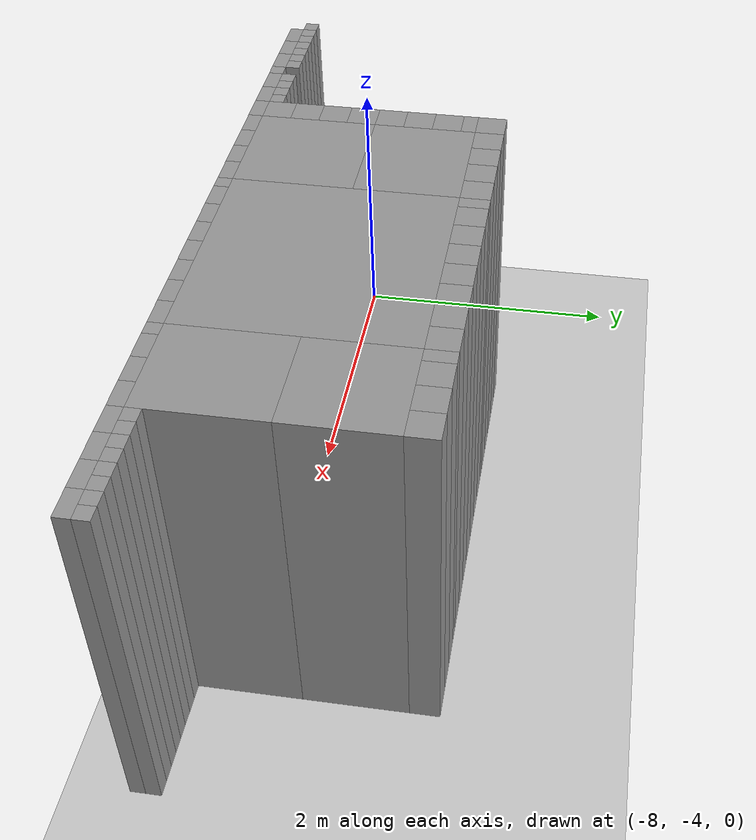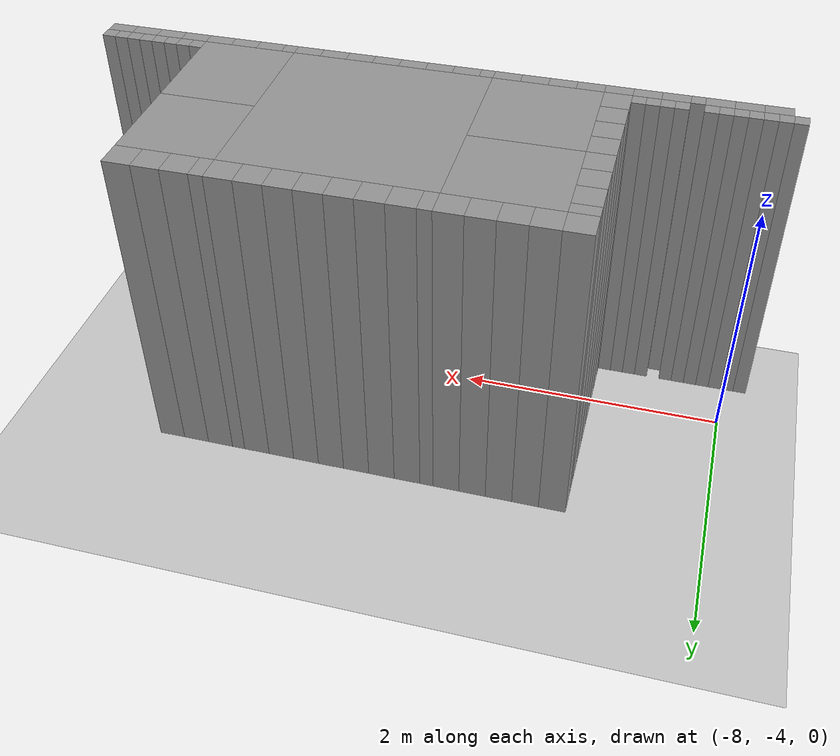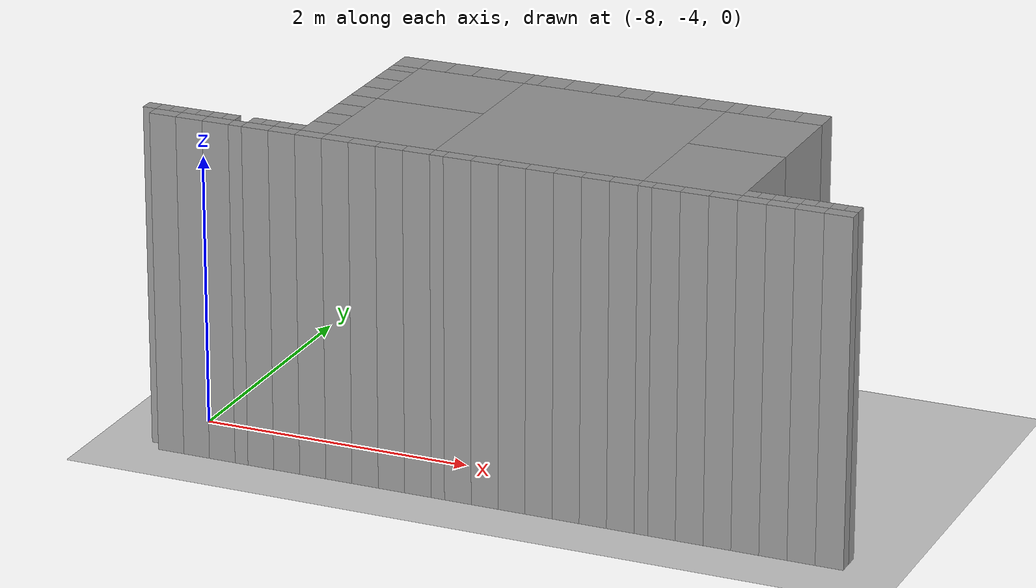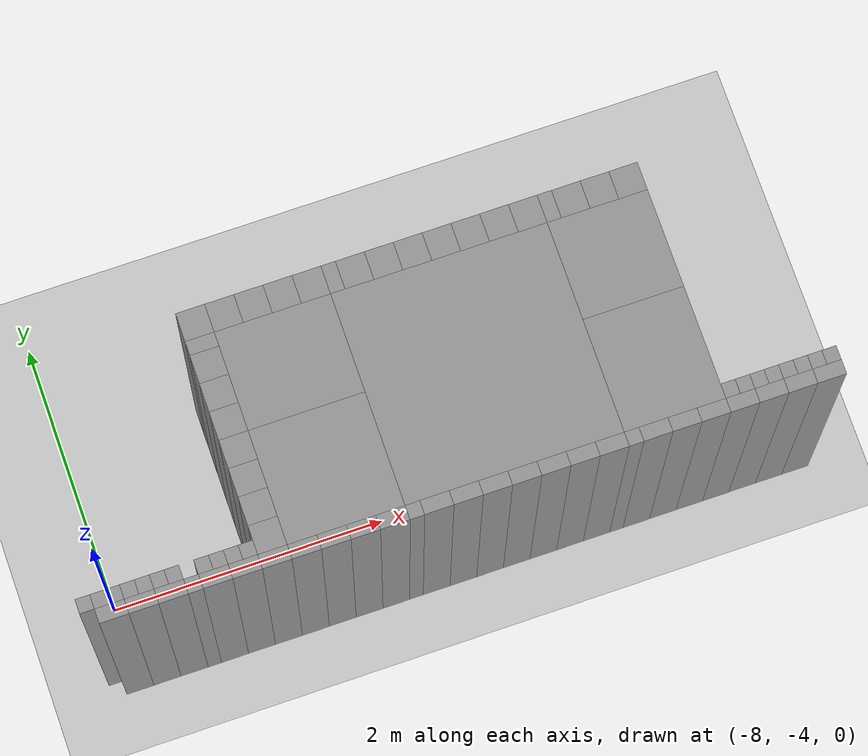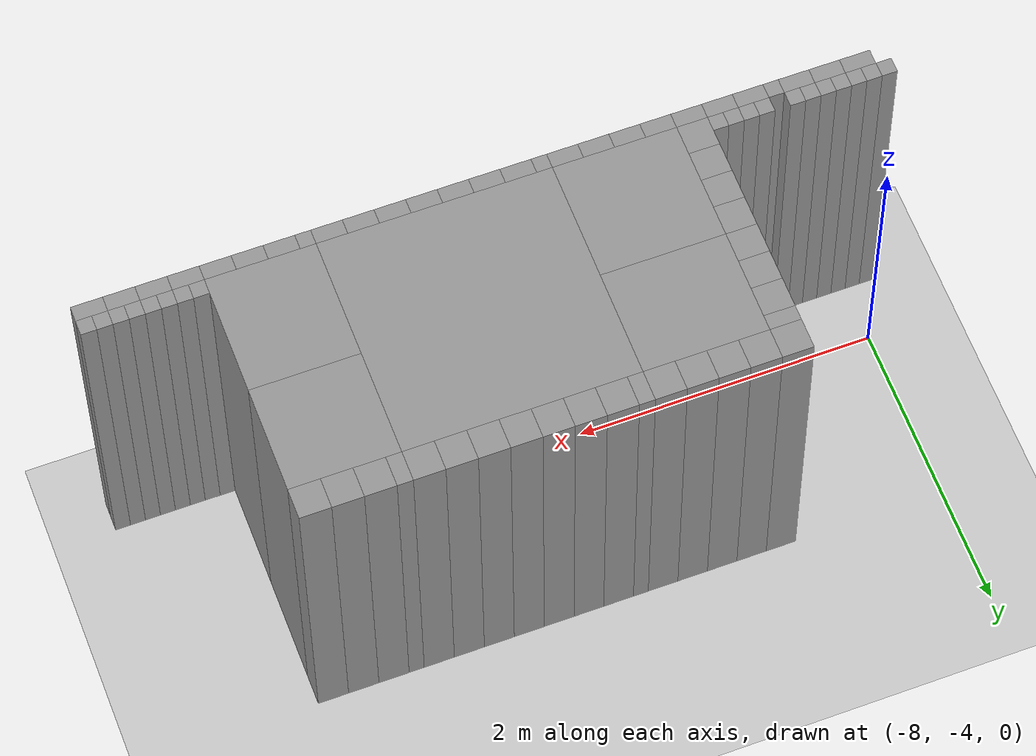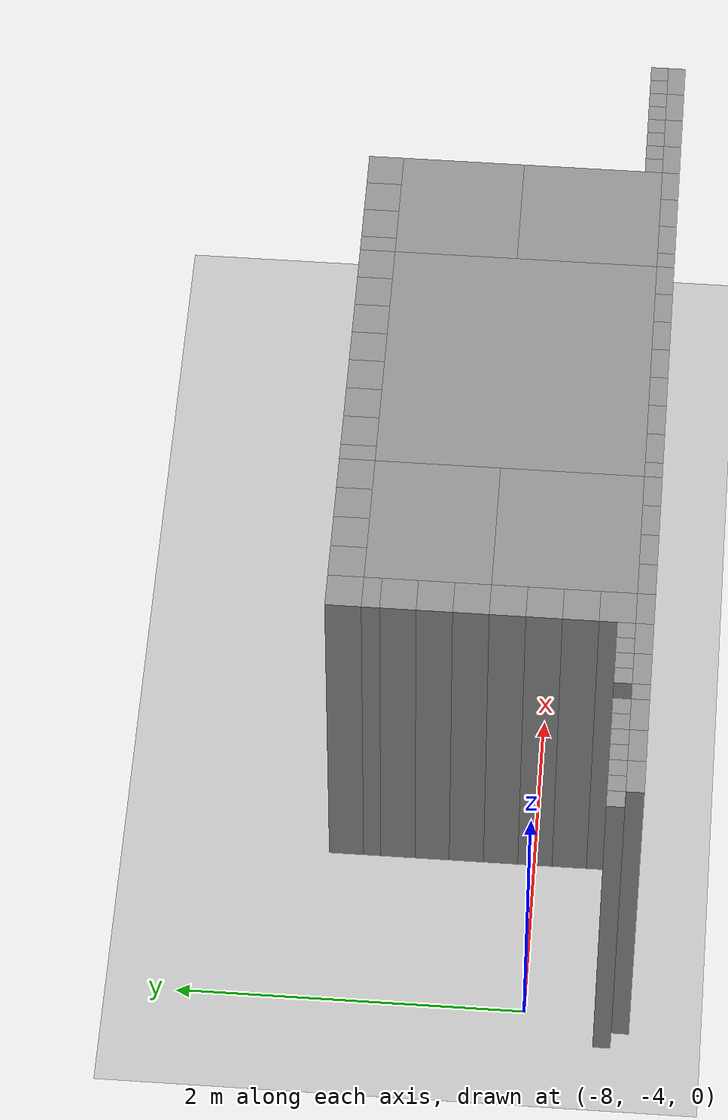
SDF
<sdf version="1.6">
 <world name="default">
  <include><uri>model://sun</uri></include>
  <include><uri>model://ground_plane</uri></include>
  <model name="stage_test">
   <static>1</static>
   <pose>-12 -12 0 0 0 0</pose>
   <link name="Wall_384">
    <pose>5.1 9.100000000000001 0 0 0 0</pose>
    <collision name="Wall_384_collision">
     <pose>0 0 1.25 0 0 0</pose>
     <geometry><box><size>0.20000000000000018 0.20000000000000107 2.5</size></box></geometry>
    </collision>
    <visual name="Wall_384_visual">
     <pose>0 0 1.25 0 0 0</pose>
     <geometry><box><size>0.20000000000000018 0.20000000000000107 2.5</size></box></geometry>
     <material>
      <script><uri>file://media/materials/scripts/gazebo.material</uri><name>Gazebo/Grey</name></script>
      <ambient>1 1 1 1</ambient>
     </material>
    </visual>
   </link>
   <link name="Wall_385">
    <pose>5.3 9.100000000000001 0 0 0 0</pose>
    <collision name="Wall_385_collision">
     <pose>0 0 1.25 0 0 0</pose>
     <geometry><box><size>0.20000000000000018 0.20000000000000107 2.5</size></box></geometry>
    </collision>
    <visual name="Wall_385_visual">
     <pose>0 0 1.25 0 0 0</pose>
     <geometry><box><size>0.20000000000000018 0.20000000000000107 2.5</size></box></geometry>
     <material>
      <script><uri>file://media/materials/scripts/gazebo.material</uri><name>Gazebo/Grey</name></script>
      <ambient>1 1 1 1</ambient>
     </material>
    </visual>
   </link>
   <link name="Wall_386">
    <pose>5.5 9.100000000000001 0 0 0 0</pose>
    <collision name="Wall_386_collision">
     <pose>0 0 1.25 0 0 0</pose>
     <geometry><box><size>0.20000000000000018 0.20000000000000107 2.5</size></box></geometry>
    </collision>
    <visual name="Wall_386_visual">
     <pose>0 0 1.25 0 0 0</pose>
     <geometry><box><size>0.20000000000000018 0.20000000000000107 2.5</size></box></geometry>
     <material>
      <script><uri>file://media/materials/scripts/gazebo.material</uri><name>Gazebo/Grey</name></script>
      <ambient>1 1 1 1</ambient>
     </material>
    </visual>
   </link>
   <link name="Wall_387">
    <pose>5.700000000000001 9.100000000000001 0 0 0 0</pose>
    <collision name="Wall_387_collision">
     <pose>0 0 1.25 0 0 0</pose>
     <geometry><box><size>0.20000000000000018 0.20000000000000107 2.5</size></box></geometry>
    </collision>
    <visual name="Wall_387_visual">
     <pose>0 0 1.25 0 0 0</pose>
     <geometry><box><size>0.20000000000000018 0.20000000000000107 2.5</size></box></geometry>
     <material>
      <script><uri>file://media/materials/scripts/gazebo.material</uri><name>Gazebo/Grey</name></script>
      <ambient>1 1 1 1</ambient>
     </material>
    </visual>
   </link>
   <link name="Wall_388">
    <pose>5.9 9.100000000000001 0 0 0 0</pose>
    <collision name="Wall_388_collision">
     <pose>0 0 1.25 0 0 0</pose>
     <geometry><box><size>0.1999999999999993 0.20000000000000107 2.5</size></box></geometry>
    </collision>
    <visual name="Wall_388_visual">
     <pose>0 0 1.25 0 0 0</pose>
     <geometry><box><size>0.1999999999999993 0.20000000000000107 2.5</size></box></geometry>
     <material>
      <script><uri>file://media/materials/scripts/gazebo.material</uri><name>Gazebo/Grey</name></script>
      <ambient>1 1 1 1</ambient>
     </material>
    </visual>
   </link>
   <link name="Wall_396">
    <pose>3.8500000000000005 7.550000000000001 0 0 0 0</pose>
    <collision name="Wall_396_collision">
     <pose>0 0 1.25 0 0 0</pose>
     <geometry><box><size>0.10000000000000009 0.10000000000000053 2.5</size></box></geometry>
    </collision>
    <visual name="Wall_396_visual">
     <pose>0 0 1.25 0 0 0</pose>
     <geometry><box><size>0.10000000000000009 0.10000000000000053 2.5</size></box></geometry>
     <material>
      <script><uri>file://media/materials/scripts/gazebo.material</uri><name>Gazebo/Grey</name></script>
      <ambient>1 1 1 1</ambient>
     </material>
    </visual>
   </link>
   <link name="Wall_397">
    <pose>3.95 7.550000000000001 0 0 0 0</pose>
    <collision name="Wall_397_collision">
     <pose>0 0 1.25 0 0 0</pose>
     <geometry><box><size>0.09999999999999964 0.10000000000000053 2.5</size></box></geometry>
    </collision>
    <visual name="Wall_397_visual">
     <pose>0 0 1.25 0 0 0</pose>
     <geometry><box><size>0.09999999999999964 0.10000000000000053 2.5</size></box></geometry>
     <material>
      <script><uri>file://media/materials/scripts/gazebo.material</uri><name>Gazebo/Grey</name></script>
      <ambient>1 1 1 1</ambient>
     </material>
    </visual>
   </link>
   <link name="Wall_398">
    <pose>4.050000000000001 7.550000000000001 0 0 0 0</pose>
    <collision name="Wall_398_collision">
     <pose>0 0 1.25 0 0 0</pose>
     <geometry><box><size>0.10000000000000053 0.10000000000000053 2.5</size></box></geometry>
    </collision>
    <visual name="Wall_398_visual">
     <pose>0 0 1.25 0 0 0</pose>
     <geometry><box><size>0.10000000000000053 0.10000000000000053 2.5</size></box></geometry>
     <material>
      <script><uri>file://media/materials/scripts/gazebo.material</uri><name>Gazebo/Grey</name></script>
      <ambient>1 1 1 1</ambient>
     </material>
    </visual>
   </link>
   <link name="Wall_399">
    <pose>4.15 7.550000000000001 0 0 0 0</pose>
    <collision name="Wall_399_collision">
     <pose>0 0 1.25 0 0 0</pose>
     <geometry><box><size>0.09999999999999964 0.10000000000000053 2.5</size></box></geometry>
    </collision>
    <visual name="Wall_399_visual">
     <pose>0 0 1.25 0 0 0</pose>
     <geometry><box><size>0.09999999999999964 0.10000000000000053 2.5</size></box></geometry>
     <material>
      <script><uri>file://media/materials/scripts/gazebo.material</uri><name>Gazebo/Grey</name></script>
      <ambient>1 1 1 1</ambient>
     </material>
    </visual>
   </link>
   <link name="Wall_400">
    <pose>4.25 7.550000000000001 0 0 0 0</pose>
    <collision name="Wall_400_collision">
     <pose>0 0 1.25 0 0 0</pose>
     <geometry><box><size>0.09999999999999964 0.10000000000000053 2.5</size></box></geometry>
    </collision>
    <visual name="Wall_400_visual">
     <pose>0 0 1.25 0 0 0</pose>
     <geometry><box><size>0.09999999999999964 0.10000000000000053 2.5</size></box></geometry>
     <material>
      <script><uri>file://media/materials/scripts/gazebo.material</uri><name>Gazebo/Grey</name></script>
      <ambient>1 1 1 1</ambient>
     </material>
    </visual>
   </link>
   <link name="Wall_401">
    <pose>4.35 7.550000000000001 0 0 0 0</pose>
    <collision name="Wall_401_collision">
     <pose>0 0 1.25 0 0 0</pose>
     <geometry><box><size>0.10000000000000053 0.10000000000000053 2.5</size></box></geometry>
    </collision>
    <visual name="Wall_401_visual">
     <pose>0 0 1.25 0 0 0</pose>
     <geometry><box><size>0.10000000000000053 0.10000000000000053 2.5</size></box></geometry>
     <material>
      <script><uri>file://media/materials/scripts/gazebo.material</uri><name>Gazebo/Grey</name></script>
      <ambient>1 1 1 1</ambient>
     </material>
    </visual>
   </link>
   <link name="Wall_402">
    <pose>4.45 7.550000000000001 0 0 0 0</pose>
    <collision name="Wall_402_collision">
     <pose>0 0 1.25 0 0 0</pose>
     <geometry><box><size>0.09999999999999964 0.10000000000000053 2.5</size></box></geometry>
    </collision>
    <visual name="Wall_402_visual">
     <pose>0 0 1.25 0 0 0</pose>
     <geometry><box><size>0.09999999999999964 0.10000000000000053 2.5</size></box></geometry>
     <material>
      <script><uri>file://media/materials/scripts/gazebo.material</uri><name>Gazebo/Grey</name></script>
      <ambient>1 1 1 1</ambient>
     </material>
    </visual>
   </link>
   <link name="Wall_408">
    <pose>4.0 7.45 0 0 0 0</pose>
    <collision name="Wall_408_collision">
     <pose>0 0 1.25 0 0 0</pose>
     <geometry><box><size>0.20000000000000018 0.09999999999999964 2.5</size></box></geometry>
    </collision>
    <visual name="Wall_408_visual">
     <pose>0 0 1.25 0 0 0</pose>
     <geometry><box><size>0.20000000000000018 0.09999999999999964 2.5</size></box></geometry>
     <material>
      <script><uri>file://media/materials/scripts/gazebo.material</uri><name>Gazebo/Grey</name></script>
      <ambient>1 1 1 1</ambient>
     </material>
    </visual>
   </link>
   <link name="Wall_409">
    <pose>4.2 7.45 0 0 0 0</pose>
    <collision name="Wall_409_collision">
     <pose>0 0 1.25 0 0 0</pose>
     <geometry><box><size>0.1999999999999993 0.09999999999999964 2.5</size></box></geometry>
    </collision>
    <visual name="Wall_409_visual">
     <pose>0 0 1.25 0 0 0</pose>
     <geometry><box><size>0.1999999999999993 0.09999999999999964 2.5</size></box></geometry>
     <material>
      <script><uri>file://media/materials/scripts/gazebo.material</uri><name>Gazebo/Grey</name></script>
      <ambient>1 1 1 1</ambient>
     </material>
    </visual>
   </link>
   <link name="Wall_410">
    <pose>4.4 7.45 0 0 0 0</pose>
    <collision name="Wall_410_collision">
     <pose>0 0 1.25 0 0 0</pose>
     <geometry><box><size>0.20000000000000018 0.09999999999999964 2.5</size></box></geometry>
    </collision>
    <visual name="Wall_410_visual">
     <pose>0 0 1.25 0 0 0</pose>
     <geometry><box><size>0.20000000000000018 0.09999999999999964 2.5</size></box></geometry>
     <material>
      <script><uri>file://media/materials/scripts/gazebo.material</uri><name>Gazebo/Grey</name></script>
      <ambient>1 1 1 1</ambient>
     </material>
    </visual>
   </link>
   <link name="Wall_411">
    <pose>5.1 8.95 0 0 0 0</pose>
    <collision name="Wall_411_collision">
     <pose>0 0 1.25 0 0 0</pose>
     <geometry><box><size>0.20000000000000018 0.09999999999999964 2.5</size></box></geometry>
    </collision>
    <visual name="Wall_411_visual">
     <pose>0 0 1.25 0 0 0</pose>
     <geometry><box><size>0.20000000000000018 0.09999999999999964 2.5</size></box></geometry>
     <material>
      <script><uri>file://media/materials/scripts/gazebo.material</uri><name>Gazebo/Grey</name></script>
      <ambient>1 1 1 1</ambient>
     </material>
    </visual>
   </link>
   <link name="Wall_412">
    <pose>5.1 8.8 0 0 0 0</pose>
    <collision name="Wall_412_collision">
     <pose>0 0 1.25 0 0 0</pose>
     <geometry><box><size>0.20000000000000018 0.1999999999999993 2.5</size></box></geometry>
    </collision>
    <visual name="Wall_412_visual">
     <pose>0 0 1.25 0 0 0</pose>
     <geometry><box><size>0.20000000000000018 0.1999999999999993 2.5</size></box></geometry>
     <material>
      <script><uri>file://media/materials/scripts/gazebo.material</uri><name>Gazebo/Grey</name></script>
      <ambient>1 1 1 1</ambient>
     </material>
    </visual>
   </link>
   <link name="Wall_413">
    <pose>5.1 8.600000000000001 0 0 0 0</pose>
    <collision name="Wall_413_collision">
     <pose>0 0 1.25 0 0 0</pose>
     <geometry><box><size>0.20000000000000018 0.20000000000000107 2.5</size></box></geometry>
    </collision>
    <visual name="Wall_413_visual">
     <pose>0 0 1.25 0 0 0</pose>
     <geometry><box><size>0.20000000000000018 0.20000000000000107 2.5</size></box></geometry>
     <material>
      <script><uri>file://media/materials/scripts/gazebo.material</uri><name>Gazebo/Grey</name></script>
      <ambient>1 1 1 1</ambient>
     </material>
    </visual>
   </link>
   <link name="Wall_414">
    <pose>5.1 8.4 0 0 0 0</pose>
    <collision name="Wall_414_collision">
     <pose>0 0 1.25 0 0 0</pose>
     <geometry><box><size>0.20000000000000018 0.1999999999999993 2.5</size></box></geometry>
    </collision>
    <visual name="Wall_414_visual">
     <pose>0 0 1.25 0 0 0</pose>
     <geometry><box><size>0.20000000000000018 0.1999999999999993 2.5</size></box></geometry>
     <material>
      <script><uri>file://media/materials/scripts/gazebo.material</uri><name>Gazebo/Grey</name></script>
      <ambient>1 1 1 1</ambient>
     </material>
    </visual>
   </link>
   <link name="Wall_415">
    <pose>4.65 7.550000000000001 0 0 0 0</pose>
    <collision name="Wall_415_collision">
     <pose>0 0 1.25 0 0 0</pose>
     <geometry><box><size>0.09999999999999964 0.10000000000000053 2.5</size></box></geometry>
    </collision>
    <visual name="Wall_415_visual">
     <pose>0 0 1.25 0 0 0</pose>
     <geometry><box><size>0.09999999999999964 0.10000000000000053 2.5</size></box></geometry>
     <material>
      <script><uri>file://media/materials/scripts/gazebo.material</uri><name>Gazebo/Grey</name></script>
      <ambient>1 1 1 1</ambient>
     </material>
    </visual>
   </link>
   <link name="Wall_416">
    <pose>4.75 7.550000000000001 0 0 0 0</pose>
    <collision name="Wall_416_collision">
     <pose>0 0 1.25 0 0 0</pose>
     <geometry><box><size>0.10000000000000053 0.10000000000000053 2.5</size></box></geometry>
    </collision>
    <visual name="Wall_416_visual">
     <pose>0 0 1.25 0 0 0</pose>
     <geometry><box><size>0.10000000000000053 0.10000000000000053 2.5</size></box></geometry>
     <material>
      <script><uri>file://media/materials/scripts/gazebo.material</uri><name>Gazebo/Grey</name></script>
      <ambient>1 1 1 1</ambient>
     </material>
    </visual>
   </link>
   <link name="Wall_417">
    <pose>5.1 8.2 0 0 0 0</pose>
    <collision name="Wall_417_collision">
     <pose>0 0 1.25 0 0 0</pose>
     <geometry><box><size>0.20000000000000018 0.20000000000000107 2.5</size></box></geometry>
    </collision>
    <visual name="Wall_417_visual">
     <pose>0 0 1.25 0 0 0</pose>
     <geometry><box><size>0.20000000000000018 0.20000000000000107 2.5</size></box></geometry>
     <material>
      <script><uri>file://media/materials/scripts/gazebo.material</uri><name>Gazebo/Grey</name></script>
      <ambient>1 1 1 1</ambient>
     </material>
    </visual>
   </link>
   <link name="Wall_418">
    <pose>5.1 8.0 0 0 0 0</pose>
    <collision name="Wall_418_collision">
     <pose>0 0 1.25 0 0 0</pose>
     <geometry><box><size>0.20000000000000018 0.1999999999999993 2.5</size></box></geometry>
    </collision>
    <visual name="Wall_418_visual">
     <pose>0 0 1.25 0 0 0</pose>
     <geometry><box><size>0.20000000000000018 0.1999999999999993 2.5</size></box></geometry>
     <material>
      <script><uri>file://media/materials/scripts/gazebo.material</uri><name>Gazebo/Grey</name></script>
      <ambient>1 1 1 1</ambient>
     </material>
    </visual>
   </link>
   <link name="Wall_419">
    <pose>4.8500000000000005 7.550000000000001 0 0 0 0</pose>
    <collision name="Wall_419_collision">
     <pose>0 0 1.25 0 0 0</pose>
     <geometry><box><size>0.09999999999999964 0.10000000000000053 2.5</size></box></geometry>
    </collision>
    <visual name="Wall_419_visual">
     <pose>0 0 1.25 0 0 0</pose>
     <geometry><box><size>0.09999999999999964 0.10000000000000053 2.5</size></box></geometry>
     <material>
      <script><uri>file://media/materials/scripts/gazebo.material</uri><name>Gazebo/Grey</name></script>
      <ambient>1 1 1 1</ambient>
     </material>
    </visual>
   </link>
   <link name="Wall_420">
    <pose>4.95 7.550000000000001 0 0 0 0</pose>
    <collision name="Wall_420_collision">
     <pose>0 0 1.25 0 0 0</pose>
     <geometry><box><size>0.09999999999999964 0.10000000000000053 2.5</size></box></geometry>
    </collision>
    <visual name="Wall_420_visual">
     <pose>0 0 1.25 0 0 0</pose>
     <geometry><box><size>0.09999999999999964 0.10000000000000053 2.5</size></box></geometry>
     <material>
      <script><uri>file://media/materials/scripts/gazebo.material</uri><name>Gazebo/Grey</name></script>
      <ambient>1 1 1 1</ambient>
     </material>
    </visual>
   </link>
   <link name="Wall_421">
    <pose>5.1 7.800000000000001 0 0 0 0</pose>
    <collision name="Wall_421_collision">
     <pose>0 0 1.25 0 0 0</pose>
     <geometry><box><size>0.20000000000000018 0.20000000000000018 2.5</size></box></geometry>
    </collision>
    <visual name="Wall_421_visual">
     <pose>0 0 1.25 0 0 0</pose>
     <geometry><box><size>0.20000000000000018 0.20000000000000018 2.5</size></box></geometry>
     <material>
      <script><uri>file://media/materials/scripts/gazebo.material</uri><name>Gazebo/Grey</name></script>
      <ambient>1 1 1 1</ambient>
     </material>
    </visual>
   </link>
   <link name="Wall_422">
    <pose>5.1 7.6 0 0 0 0</pose>
    <collision name="Wall_422_collision">
     <pose>0 0 1.25 0 0 0</pose>
     <geometry><box><size>0.20000000000000018 0.20000000000000018 2.5</size></box></geometry>
    </collision>
    <visual name="Wall_422_visual">
     <pose>0 0 1.25 0 0 0</pose>
     <geometry><box><size>0.20000000000000018 0.20000000000000018 2.5</size></box></geometry>
     <material>
      <script><uri>file://media/materials/scripts/gazebo.material</uri><name>Gazebo/Grey</name></script>
      <ambient>1 1 1 1</ambient>
     </material>
    </visual>
   </link>
   <link name="Wall_423">
    <pose>5.6 8.65 0 0 0 0</pose>
    <collision name="Wall_423_collision">
     <pose>0 0 1.25 0 0 0</pose>
     <geometry><box><size>0.7999999999999998 0.6999999999999993 2.5</size></box></geometry>
    </collision>
    <visual name="Wall_423_visual">
     <pose>0 0 1.25 0 0 0</pose>
     <geometry><box><size>0.7999999999999998 0.6999999999999993 2.5</size></box></geometry>
     <material>
      <script><uri>file://media/materials/scripts/gazebo.material</uri><name>Gazebo/Grey</name></script>
      <ambient>1 1 1 1</ambient>
     </material>
    </visual>
   </link>
   <link name="Wall_424">
    <pose>5.6 7.9 0 0 0 0</pose>
    <collision name="Wall_424_collision">
     <pose>0 0 1.25 0 0 0</pose>
     <geometry><box><size>0.7999999999999998 0.8000000000000007 2.5</size></box></geometry>
    </collision>
    <visual name="Wall_424_visual">
     <pose>0 0 1.25 0 0 0</pose>
     <geometry><box><size>0.7999999999999998 0.8000000000000007 2.5</size></box></geometry>
     <material>
      <script><uri>file://media/materials/scripts/gazebo.material</uri><name>Gazebo/Grey</name></script>
      <ambient>1 1 1 1</ambient>
     </material>
    </visual>
   </link>
   <link name="Wall_425">
    <pose>4.550000000000001 7.45 0 0 0 0</pose>
    <collision name="Wall_425_collision">
     <pose>0 0 1.25 0 0 0</pose>
     <geometry><box><size>0.10000000000000053 0.09999999999999964 2.5</size></box></geometry>
    </collision>
    <visual name="Wall_425_visual">
     <pose>0 0 1.25 0 0 0</pose>
     <geometry><box><size>0.10000000000000053 0.09999999999999964 2.5</size></box></geometry>
     <material>
      <script><uri>file://media/materials/scripts/gazebo.material</uri><name>Gazebo/Grey</name></script>
      <ambient>1 1 1 1</ambient>
     </material>
    </visual>
   </link>
   <link name="Wall_426">
    <pose>4.700000000000001 7.45 0 0 0 0</pose>
    <collision name="Wall_426_collision">
     <pose>0 0 1.25 0 0 0</pose>
     <geometry><box><size>0.20000000000000018 0.09999999999999964 2.5</size></box></geometry>
    </collision>
    <visual name="Wall_426_visual">
     <pose>0 0 1.25 0 0 0</pose>
     <geometry><box><size>0.20000000000000018 0.09999999999999964 2.5</size></box></geometry>
     <material>
      <script><uri>file://media/materials/scripts/gazebo.material</uri><name>Gazebo/Grey</name></script>
      <ambient>1 1 1 1</ambient>
     </material>
    </visual>
   </link>
   <link name="Wall_427">
    <pose>4.9 7.45 0 0 0 0</pose>
    <collision name="Wall_427_collision">
     <pose>0 0 1.25 0 0 0</pose>
     <geometry><box><size>0.1999999999999993 0.09999999999999964 2.5</size></box></geometry>
    </collision>
    <visual name="Wall_427_visual">
     <pose>0 0 1.25 0 0 0</pose>
     <geometry><box><size>0.1999999999999993 0.09999999999999964 2.5</size></box></geometry>
     <material>
      <script><uri>file://media/materials/scripts/gazebo.material</uri><name>Gazebo/Grey</name></script>
      <ambient>1 1 1 1</ambient>
     </material>
    </visual>
   </link>
   <link name="Wall_428">
    <pose>5.1 7.45 0 0 0 0</pose>
    <collision name="Wall_428_collision">
     <pose>0 0 1.25 0 0 0</pose>
     <geometry><box><size>0.20000000000000018 0.09999999999999964 2.5</size></box></geometry>
    </collision>
    <visual name="Wall_428_visual">
     <pose>0 0 1.25 0 0 0</pose>
     <geometry><box><size>0.20000000000000018 0.09999999999999964 2.5</size></box></geometry>
     <material>
      <script><uri>file://media/materials/scripts/gazebo.material</uri><name>Gazebo/Grey</name></script>
      <ambient>1 1 1 1</ambient>
     </material>
    </visual>
   </link>
   <link name="Wall_429">
    <pose>5.3 7.45 0 0 0 0</pose>
    <collision name="Wall_429_collision">
     <pose>0 0 1.25 0 0 0</pose>
     <geometry><box><size>0.20000000000000018 0.09999999999999964 2.5</size></box></geometry>
    </collision>
    <visual name="Wall_429_visual">
     <pose>0 0 1.25 0 0 0</pose>
     <geometry><box><size>0.20000000000000018 0.09999999999999964 2.5</size></box></geometry>
     <material>
      <script><uri>file://media/materials/scripts/gazebo.material</uri><name>Gazebo/Grey</name></script>
      <ambient>1 1 1 1</ambient>
     </material>
    </visual>
   </link>
   <link name="Wall_430">
    <pose>5.5 7.45 0 0 0 0</pose>
    <collision name="Wall_430_collision">
     <pose>0 0 1.25 0 0 0</pose>
     <geometry><box><size>0.20000000000000018 0.09999999999999964 2.5</size></box></geometry>
    </collision>
    <visual name="Wall_430_visual">
     <pose>0 0 1.25 0 0 0</pose>
     <geometry><box><size>0.20000000000000018 0.09999999999999964 2.5</size></box></geometry>
     <material>
      <script><uri>file://media/materials/scripts/gazebo.material</uri><name>Gazebo/Grey</name></script>
      <ambient>1 1 1 1</ambient>
     </material>
    </visual>
   </link>
   <link name="Wall_431">
    <pose>5.700000000000001 7.45 0 0 0 0</pose>
    <collision name="Wall_431_collision">
     <pose>0 0 1.25 0 0 0</pose>
     <geometry><box><size>0.20000000000000018 0.09999999999999964 2.5</size></box></geometry>
    </collision>
    <visual name="Wall_431_visual">
     <pose>0 0 1.25 0 0 0</pose>
     <geometry><box><size>0.20000000000000018 0.09999999999999964 2.5</size></box></geometry>
     <material>
      <script><uri>file://media/materials/scripts/gazebo.material</uri><name>Gazebo/Grey</name></script>
      <ambient>1 1 1 1</ambient>
     </material>
    </visual>
   </link>
   <link name="Wall_432">
    <pose>5.9 7.45 0 0 0 0</pose>
    <collision name="Wall_432_collision">
     <pose>0 0 1.25 0 0 0</pose>
     <geometry><box><size>0.1999999999999993 0.09999999999999964 2.5</size></box></geometry>
    </collision>
    <visual name="Wall_432_visual">
     <pose>0 0 1.25 0 0 0</pose>
     <geometry><box><size>0.1999999999999993 0.09999999999999964 2.5</size></box></geometry>
     <material>
      <script><uri>file://media/materials/scripts/gazebo.material</uri><name>Gazebo/Grey</name></script>
      <ambient>1 1 1 1</ambient>
     </material>
    </visual>
   </link>
   <link name="Wall_433">
    <pose>6.050000000000001 9.100000000000001 0 0 0 0</pose>
    <collision name="Wall_433_collision">
     <pose>0 0 1.25 0 0 0</pose>
     <geometry><box><size>0.10000000000000053 0.20000000000000107 2.5</size></box></geometry>
    </collision>
    <visual name="Wall_433_visual">
     <pose>0 0 1.25 0 0 0</pose>
     <geometry><box><size>0.10000000000000053 0.20000000000000107 2.5</size></box></geometry>
     <material>
      <script><uri>file://media/materials/scripts/gazebo.material</uri><name>Gazebo/Grey</name></script>
      <ambient>1 1 1 1</ambient>
     </material>
    </visual>
   </link>
   <link name="Wall_434">
    <pose>6.200000000000001 9.100000000000001 0 0 0 0</pose>
    <collision name="Wall_434_collision">
     <pose>0 0 1.25 0 0 0</pose>
     <geometry><box><size>0.20000000000000018 0.20000000000000107 2.5</size></box></geometry>
    </collision>
    <visual name="Wall_434_visual">
     <pose>0 0 1.25 0 0 0</pose>
     <geometry><box><size>0.20000000000000018 0.20000000000000107 2.5</size></box></geometry>
     <material>
      <script><uri>file://media/materials/scripts/gazebo.material</uri><name>Gazebo/Grey</name></script>
      <ambient>1 1 1 1</ambient>
     </material>
    </visual>
   </link>
   <link name="Wall_435">
    <pose>6.4 9.100000000000001 0 0 0 0</pose>
    <collision name="Wall_435_collision">
     <pose>0 0 1.25 0 0 0</pose>
     <geometry><box><size>0.1999999999999993 0.20000000000000107 2.5</size></box></geometry>
    </collision>
    <visual name="Wall_435_visual">
     <pose>0 0 1.25 0 0 0</pose>
     <geometry><box><size>0.1999999999999993 0.20000000000000107 2.5</size></box></geometry>
     <material>
      <script><uri>file://media/materials/scripts/gazebo.material</uri><name>Gazebo/Grey</name></script>
      <ambient>1 1 1 1</ambient>
     </material>
    </visual>
   </link>
   <link name="Wall_436">
    <pose>6.6 9.100000000000001 0 0 0 0</pose>
    <collision name="Wall_436_collision">
     <pose>0 0 1.25 0 0 0</pose>
     <geometry><box><size>0.20000000000000018 0.20000000000000107 2.5</size></box></geometry>
    </collision>
    <visual name="Wall_436_visual">
     <pose>0 0 1.25 0 0 0</pose>
     <geometry><box><size>0.20000000000000018 0.20000000000000107 2.5</size></box></geometry>
     <material>
      <script><uri>file://media/materials/scripts/gazebo.material</uri><name>Gazebo/Grey</name></script>
      <ambient>1 1 1 1</ambient>
     </material>
    </visual>
   </link>
   <link name="Wall_437">
    <pose>6.8 9.100000000000001 0 0 0 0</pose>
    <collision name="Wall_437_collision">
     <pose>0 0 1.25 0 0 0</pose>
     <geometry><box><size>0.20000000000000018 0.20000000000000107 2.5</size></box></geometry>
    </collision>
    <visual name="Wall_437_visual">
     <pose>0 0 1.25 0 0 0</pose>
     <geometry><box><size>0.20000000000000018 0.20000000000000107 2.5</size></box></geometry>
     <material>
      <script><uri>file://media/materials/scripts/gazebo.material</uri><name>Gazebo/Grey</name></script>
      <ambient>1 1 1 1</ambient>
     </material>
    </visual>
   </link>
   <link name="Wall_438">
    <pose>7.0 9.100000000000001 0 0 0 0</pose>
    <collision name="Wall_438_collision">
     <pose>0 0 1.25 0 0 0</pose>
     <geometry><box><size>0.20000000000000018 0.20000000000000107 2.5</size></box></geometry>
    </collision>
    <visual name="Wall_438_visual">
     <pose>0 0 1.25 0 0 0</pose>
     <geometry><box><size>0.20000000000000018 0.20000000000000107 2.5</size></box></geometry>
     <material>
      <script><uri>file://media/materials/scripts/gazebo.material</uri><name>Gazebo/Grey</name></script>
      <ambient>1 1 1 1</ambient>
     </material>
    </visual>
   </link>
   <link name="Wall_439">
    <pose>7.200000000000001 9.100000000000001 0 0 0 0</pose>
    <collision name="Wall_439_collision">
     <pose>0 0 1.25 0 0 0</pose>
     <geometry><box><size>0.20000000000000018 0.20000000000000107 2.5</size></box></geometry>
    </collision>
    <visual name="Wall_439_visual">
     <pose>0 0 1.25 0 0 0</pose>
     <geometry><box><size>0.20000000000000018 0.20000000000000107 2.5</size></box></geometry>
     <material>
      <script><uri>file://media/materials/scripts/gazebo.material</uri><name>Gazebo/Grey</name></script>
      <ambient>1 1 1 1</ambient>
     </material>
    </visual>
   </link>
   <link name="Wall_440">
    <pose>7.4 9.100000000000001 0 0 0 0</pose>
    <collision name="Wall_440_collision">
     <pose>0 0 1.25 0 0 0</pose>
     <geometry><box><size>0.1999999999999993 0.20000000000000107 2.5</size></box></geometry>
    </collision>
    <visual name="Wall_440_visual">
     <pose>0 0 1.25 0 0 0</pose>
     <geometry><box><size>0.1999999999999993 0.20000000000000107 2.5</size></box></geometry>
     <material>
      <script><uri>file://media/materials/scripts/gazebo.material</uri><name>Gazebo/Grey</name></script>
      <ambient>1 1 1 1</ambient>
     </material>
    </visual>
   </link>
   <link name="Wall_441">
    <pose>7.550000000000001 9.100000000000001 0 0 0 0</pose>
    <collision name="Wall_441_collision">
     <pose>0 0 1.25 0 0 0</pose>
     <geometry><box><size>0.10000000000000053 0.20000000000000107 2.5</size></box></geometry>
    </collision>
    <visual name="Wall_441_visual">
     <pose>0 0 1.25 0 0 0</pose>
     <geometry><box><size>0.10000000000000053 0.20000000000000107 2.5</size></box></geometry>
     <material>
      <script><uri>file://media/materials/scripts/gazebo.material</uri><name>Gazebo/Grey</name></script>
      <ambient>1 1 1 1</ambient>
     </material>
    </visual>
   </link>
   <link name="Wall_442">
    <pose>7.700000000000001 9.100000000000001 0 0 0 0</pose>
    <collision name="Wall_442_collision">
     <pose>0 0 1.25 0 0 0</pose>
     <geometry><box><size>0.20000000000000018 0.20000000000000107 2.5</size></box></geometry>
    </collision>
    <visual name="Wall_442_visual">
     <pose>0 0 1.25 0 0 0</pose>
     <geometry><box><size>0.20000000000000018 0.20000000000000107 2.5</size></box></geometry>
     <material>
      <script><uri>file://media/materials/scripts/gazebo.material</uri><name>Gazebo/Grey</name></script>
      <ambient>1 1 1 1</ambient>
     </material>
    </visual>
   </link>
   <link name="Wall_443">
    <pose>7.9 9.100000000000001 0 0 0 0</pose>
    <collision name="Wall_443_collision">
     <pose>0 0 1.25 0 0 0</pose>
     <geometry><box><size>0.1999999999999993 0.20000000000000107 2.5</size></box></geometry>
    </collision>
    <visual name="Wall_443_visual">
     <pose>0 0 1.25 0 0 0</pose>
     <geometry><box><size>0.1999999999999993 0.20000000000000107 2.5</size></box></geometry>
     <material>
      <script><uri>file://media/materials/scripts/gazebo.material</uri><name>Gazebo/Grey</name></script>
      <ambient>1 1 1 1</ambient>
     </material>
    </visual>
   </link>
   <link name="Wall_444">
    <pose>8.100000000000001 9.100000000000001 0 0 0 0</pose>
    <collision name="Wall_444_collision">
     <pose>0 0 1.25 0 0 0</pose>
     <geometry><box><size>0.20000000000000107 0.20000000000000107 2.5</size></box></geometry>
    </collision>
    <visual name="Wall_444_visual">
     <pose>0 0 1.25 0 0 0</pose>
     <geometry><box><size>0.20000000000000107 0.20000000000000107 2.5</size></box></geometry>
     <material>
      <script><uri>file://media/materials/scripts/gazebo.material</uri><name>Gazebo/Grey</name></script>
      <ambient>1 1 1 1</ambient>
     </material>
    </visual>
   </link>
   <link name="Wall_445">
    <pose>6.75 8.25 0 0 0 0</pose>
    <collision name="Wall_445_collision">
     <pose>0 0 1.25 0 0 0</pose>
     <geometry><box><size>1.5 1.5 2.5</size></box></geometry>
    </collision>
    <visual name="Wall_445_visual">
     <pose>0 0 1.25 0 0 0</pose>
     <geometry><box><size>1.5 1.5 2.5</size></box></geometry>
     <material>
      <script><uri>file://media/materials/scripts/gazebo.material</uri><name>Gazebo/Grey</name></script>
      <ambient>1 1 1 1</ambient>
     </material>
    </visual>
   </link>
   <link name="Wall_446">
    <pose>6.050000000000001 7.45 0 0 0 0</pose>
    <collision name="Wall_446_collision">
     <pose>0 0 1.25 0 0 0</pose>
     <geometry><box><size>0.10000000000000053 0.09999999999999964 2.5</size></box></geometry>
    </collision>
    <visual name="Wall_446_visual">
     <pose>0 0 1.25 0 0 0</pose>
     <geometry><box><size>0.10000000000000053 0.09999999999999964 2.5</size></box></geometry>
     <material>
      <script><uri>file://media/materials/scripts/gazebo.material</uri><name>Gazebo/Grey</name></script>
      <ambient>1 1 1 1</ambient>
     </material>
    </visual>
   </link>
   <link name="Wall_447">
    <pose>6.200000000000001 7.45 0 0 0 0</pose>
    <collision name="Wall_447_collision">
     <pose>0 0 1.25 0 0 0</pose>
     <geometry><box><size>0.20000000000000018 0.09999999999999964 2.5</size></box></geometry>
    </collision>
    <visual name="Wall_447_visual">
     <pose>0 0 1.25 0 0 0</pose>
     <geometry><box><size>0.20000000000000018 0.09999999999999964 2.5</size></box></geometry>
     <material>
      <script><uri>file://media/materials/scripts/gazebo.material</uri><name>Gazebo/Grey</name></script>
      <ambient>1 1 1 1</ambient>
     </material>
    </visual>
   </link>
   <link name="Wall_448">
    <pose>6.4 7.45 0 0 0 0</pose>
    <collision name="Wall_448_collision">
     <pose>0 0 1.25 0 0 0</pose>
     <geometry><box><size>0.1999999999999993 0.09999999999999964 2.5</size></box></geometry>
    </collision>
    <visual name="Wall_448_visual">
     <pose>0 0 1.25 0 0 0</pose>
     <geometry><box><size>0.1999999999999993 0.09999999999999964 2.5</size></box></geometry>
     <material>
      <script><uri>file://media/materials/scripts/gazebo.material</uri><name>Gazebo/Grey</name></script>
      <ambient>1 1 1 1</ambient>
     </material>
    </visual>
   </link>
   <link name="Wall_449">
    <pose>6.6 7.45 0 0 0 0</pose>
    <collision name="Wall_449_collision">
     <pose>0 0 1.25 0 0 0</pose>
     <geometry><box><size>0.20000000000000018 0.09999999999999964 2.5</size></box></geometry>
    </collision>
    <visual name="Wall_449_visual">
     <pose>0 0 1.25 0 0 0</pose>
     <geometry><box><size>0.20000000000000018 0.09999999999999964 2.5</size></box></geometry>
     <material>
      <script><uri>file://media/materials/scripts/gazebo.material</uri><name>Gazebo/Grey</name></script>
      <ambient>1 1 1 1</ambient>
     </material>
    </visual>
   </link>
   <link name="Wall_450">
    <pose>6.8 7.45 0 0 0 0</pose>
    <collision name="Wall_450_collision">
     <pose>0 0 1.25 0 0 0</pose>
     <geometry><box><size>0.20000000000000018 0.09999999999999964 2.5</size></box></geometry>
    </collision>
    <visual name="Wall_450_visual">
     <pose>0 0 1.25 0 0 0</pose>
     <geometry><box><size>0.20000000000000018 0.09999999999999964 2.5</size></box></geometry>
     <material>
      <script><uri>file://media/materials/scripts/gazebo.material</uri><name>Gazebo/Grey</name></script>
      <ambient>1 1 1 1</ambient>
     </material>
    </visual>
   </link>
   <link name="Wall_451">
    <pose>7.0 7.45 0 0 0 0</pose>
    <collision name="Wall_451_collision">
     <pose>0 0 1.25 0 0 0</pose>
     <geometry><box><size>0.20000000000000018 0.09999999999999964 2.5</size></box></geometry>
    </collision>
    <visual name="Wall_451_visual">
     <pose>0 0 1.25 0 0 0</pose>
     <geometry><box><size>0.20000000000000018 0.09999999999999964 2.5</size></box></geometry>
     <material>
      <script><uri>file://media/materials/scripts/gazebo.material</uri><name>Gazebo/Grey</name></script>
      <ambient>1 1 1 1</ambient>
     </material>
    </visual>
   </link>
   <link name="Wall_452">
    <pose>7.200000000000001 7.45 0 0 0 0</pose>
    <collision name="Wall_452_collision">
     <pose>0 0 1.25 0 0 0</pose>
     <geometry><box><size>0.20000000000000018 0.09999999999999964 2.5</size></box></geometry>
    </collision>
    <visual name="Wall_452_visual">
     <pose>0 0 1.25 0 0 0</pose>
     <geometry><box><size>0.20000000000000018 0.09999999999999964 2.5</size></box></geometry>
     <material>
      <script><uri>file://media/materials/scripts/gazebo.material</uri><name>Gazebo/Grey</name></script>
      <ambient>1 1 1 1</ambient>
     </material>
    </visual>
   </link>
   <link name="Wall_453">
    <pose>7.4 7.45 0 0 0 0</pose>
    <collision name="Wall_453_collision">
     <pose>0 0 1.25 0 0 0</pose>
     <geometry><box><size>0.1999999999999993 0.09999999999999964 2.5</size></box></geometry>
    </collision>
    <visual name="Wall_453_visual">
     <pose>0 0 1.25 0 0 0</pose>
     <geometry><box><size>0.1999999999999993 0.09999999999999964 2.5</size></box></geometry>
     <material>
      <script><uri>file://media/materials/scripts/gazebo.material</uri><name>Gazebo/Grey</name></script>
      <ambient>1 1 1 1</ambient>
     </material>
    </visual>
   </link>
   <link name="Wall_454">
    <pose>7.8500000000000005 8.65 0 0 0 0</pose>
    <collision name="Wall_454_collision">
     <pose>0 0 1.25 0 0 0</pose>
     <geometry><box><size>0.7000000000000011 0.6999999999999993 2.5</size></box></geometry>
    </collision>
    <visual name="Wall_454_visual">
     <pose>0 0 1.25 0 0 0</pose>
     <geometry><box><size>0.7000000000000011 0.6999999999999993 2.5</size></box></geometry>
     <material>
      <script><uri>file://media/materials/scripts/gazebo.material</uri><name>Gazebo/Grey</name></script>
      <ambient>1 1 1 1</ambient>
     </material>
    </visual>
   </link>
   <link name="Wall_455">
    <pose>7.8500000000000005 7.9 0 0 0 0</pose>
    <collision name="Wall_455_collision">
     <pose>0 0 1.25 0 0 0</pose>
     <geometry><box><size>0.7000000000000011 0.8000000000000007 2.5</size></box></geometry>
    </collision>
    <visual name="Wall_455_visual">
     <pose>0 0 1.25 0 0 0</pose>
     <geometry><box><size>0.7000000000000011 0.8000000000000007 2.5</size></box></geometry>
     <material>
      <script><uri>file://media/materials/scripts/gazebo.material</uri><name>Gazebo/Grey</name></script>
      <ambient>1 1 1 1</ambient>
     </material>
    </visual>
   </link>
   <link name="Wall_456">
    <pose>8.25 7.550000000000001 0 0 0 0</pose>
    <collision name="Wall_456_collision">
     <pose>0 0 1.25 0 0 0</pose>
     <geometry><box><size>0.09999999999999964 0.10000000000000053 2.5</size></box></geometry>
    </collision>
    <visual name="Wall_456_visual">
     <pose>0 0 1.25 0 0 0</pose>
     <geometry><box><size>0.09999999999999964 0.10000000000000053 2.5</size></box></geometry>
     <material>
      <script><uri>file://media/materials/scripts/gazebo.material</uri><name>Gazebo/Grey</name></script>
      <ambient>1 1 1 1</ambient>
     </material>
    </visual>
   </link>
   <link name="Wall_457">
    <pose>8.350000000000001 7.550000000000001 0 0 0 0</pose>
    <collision name="Wall_457_collision">
     <pose>0 0 1.25 0 0 0</pose>
     <geometry><box><size>0.09999999999999964 0.10000000000000053 2.5</size></box></geometry>
    </collision>
    <visual name="Wall_457_visual">
     <pose>0 0 1.25 0 0 0</pose>
     <geometry><box><size>0.09999999999999964 0.10000000000000053 2.5</size></box></geometry>
     <material>
      <script><uri>file://media/materials/scripts/gazebo.material</uri><name>Gazebo/Grey</name></script>
      <ambient>1 1 1 1</ambient>
     </material>
    </visual>
   </link>
   <link name="Wall_458">
    <pose>8.45 7.550000000000001 0 0 0 0</pose>
    <collision name="Wall_458_collision">
     <pose>0 0 1.25 0 0 0</pose>
     <geometry><box><size>0.09999999999999964 0.10000000000000053 2.5</size></box></geometry>
    </collision>
    <visual name="Wall_458_visual">
     <pose>0 0 1.25 0 0 0</pose>
     <geometry><box><size>0.09999999999999964 0.10000000000000053 2.5</size></box></geometry>
     <material>
      <script><uri>file://media/materials/scripts/gazebo.material</uri><name>Gazebo/Grey</name></script>
      <ambient>1 1 1 1</ambient>
     </material>
    </visual>
   </link>
   <link name="Wall_459">
    <pose>8.55 7.550000000000001 0 0 0 0</pose>
    <collision name="Wall_459_collision">
     <pose>0 0 1.25 0 0 0</pose>
     <geometry><box><size>0.09999999999999964 0.10000000000000053 2.5</size></box></geometry>
    </collision>
    <visual name="Wall_459_visual">
     <pose>0 0 1.25 0 0 0</pose>
     <geometry><box><size>0.09999999999999964 0.10000000000000053 2.5</size></box></geometry>
     <material>
      <script><uri>file://media/materials/scripts/gazebo.material</uri><name>Gazebo/Grey</name></script>
      <ambient>1 1 1 1</ambient>
     </material>
    </visual>
   </link>
   <link name="Wall_460">
    <pose>8.65 7.550000000000001 0 0 0 0</pose>
    <collision name="Wall_460_collision">
     <pose>0 0 1.25 0 0 0</pose>
     <geometry><box><size>0.10000000000000142 0.10000000000000053 2.5</size></box></geometry>
    </collision>
    <visual name="Wall_460_visual">
     <pose>0 0 1.25 0 0 0</pose>
     <geometry><box><size>0.10000000000000142 0.10000000000000053 2.5</size></box></geometry>
     <material>
      <script><uri>file://media/materials/scripts/gazebo.material</uri><name>Gazebo/Grey</name></script>
      <ambient>1 1 1 1</ambient>
     </material>
    </visual>
   </link>
   <link name="Wall_461">
    <pose>8.75 7.550000000000001 0 0 0 0</pose>
    <collision name="Wall_461_collision">
     <pose>0 0 1.25 0 0 0</pose>
     <geometry><box><size>0.09999999999999964 0.10000000000000053 2.5</size></box></geometry>
    </collision>
    <visual name="Wall_461_visual">
     <pose>0 0 1.25 0 0 0</pose>
     <geometry><box><size>0.09999999999999964 0.10000000000000053 2.5</size></box></geometry>
     <material>
      <script><uri>file://media/materials/scripts/gazebo.material</uri><name>Gazebo/Grey</name></script>
      <ambient>1 1 1 1</ambient>
     </material>
    </visual>
   </link>
   <link name="Wall_462">
    <pose>8.850000000000001 7.550000000000001 0 0 0 0</pose>
    <collision name="Wall_462_collision">
     <pose>0 0 1.25 0 0 0</pose>
     <geometry><box><size>0.09999999999999964 0.10000000000000053 2.5</size></box></geometry>
    </collision>
    <visual name="Wall_462_visual">
     <pose>0 0 1.25 0 0 0</pose>
     <geometry><box><size>0.09999999999999964 0.10000000000000053 2.5</size></box></geometry>
     <material>
      <script><uri>file://media/materials/scripts/gazebo.material</uri><name>Gazebo/Grey</name></script>
      <ambient>1 1 1 1</ambient>
     </material>
    </visual>
   </link>
   <link name="Wall_463">
    <pose>8.95 7.550000000000001 0 0 0 0</pose>
    <collision name="Wall_463_collision">
     <pose>0 0 1.25 0 0 0</pose>
     <geometry><box><size>0.09999999999999964 0.10000000000000053 2.5</size></box></geometry>
    </collision>
    <visual name="Wall_463_visual">
     <pose>0 0 1.25 0 0 0</pose>
     <geometry><box><size>0.09999999999999964 0.10000000000000053 2.5</size></box></geometry>
     <material>
      <script><uri>file://media/materials/scripts/gazebo.material</uri><name>Gazebo/Grey</name></script>
      <ambient>1 1 1 1</ambient>
     </material>
    </visual>
   </link>
   <link name="Wall_464">
    <pose>7.550000000000001 7.45 0 0 0 0</pose>
    <collision name="Wall_464_collision">
     <pose>0 0 1.25 0 0 0</pose>
     <geometry><box><size>0.10000000000000053 0.09999999999999964 2.5</size></box></geometry>
    </collision>
    <visual name="Wall_464_visual">
     <pose>0 0 1.25 0 0 0</pose>
     <geometry><box><size>0.10000000000000053 0.09999999999999964 2.5</size></box></geometry>
     <material>
      <script><uri>file://media/materials/scripts/gazebo.material</uri><name>Gazebo/Grey</name></script>
      <ambient>1 1 1 1</ambient>
     </material>
    </visual>
   </link>
   <link name="Wall_465">
    <pose>7.700000000000001 7.45 0 0 0 0</pose>
    <collision name="Wall_465_collision">
     <pose>0 0 1.25 0 0 0</pose>
     <geometry><box><size>0.20000000000000018 0.09999999999999964 2.5</size></box></geometry>
    </collision>
    <visual name="Wall_465_visual">
     <pose>0 0 1.25 0 0 0</pose>
     <geometry><box><size>0.20000000000000018 0.09999999999999964 2.5</size></box></geometry>
     <material>
      <script><uri>file://media/materials/scripts/gazebo.material</uri><name>Gazebo/Grey</name></script>
      <ambient>1 1 1 1</ambient>
     </material>
    </visual>
   </link>
   <link name="Wall_466">
    <pose>7.9 7.45 0 0 0 0</pose>
    <collision name="Wall_466_collision">
     <pose>0 0 1.25 0 0 0</pose>
     <geometry><box><size>0.1999999999999993 0.09999999999999964 2.5</size></box></geometry>
    </collision>
    <visual name="Wall_466_visual">
     <pose>0 0 1.25 0 0 0</pose>
     <geometry><box><size>0.1999999999999993 0.09999999999999964 2.5</size></box></geometry>
     <material>
      <script><uri>file://media/materials/scripts/gazebo.material</uri><name>Gazebo/Grey</name></script>
      <ambient>1 1 1 1</ambient>
     </material>
    </visual>
   </link>
   <link name="Wall_467">
    <pose>8.100000000000001 7.45 0 0 0 0</pose>
    <collision name="Wall_467_collision">
     <pose>0 0 1.25 0 0 0</pose>
     <geometry><box><size>0.20000000000000107 0.09999999999999964 2.5</size></box></geometry>
    </collision>
    <visual name="Wall_467_visual">
     <pose>0 0 1.25 0 0 0</pose>
     <geometry><box><size>0.20000000000000107 0.09999999999999964 2.5</size></box></geometry>
     <material>
      <script><uri>file://media/materials/scripts/gazebo.material</uri><name>Gazebo/Grey</name></script>
      <ambient>1 1 1 1</ambient>
     </material>
    </visual>
   </link>
   <link name="Wall_468">
    <pose>8.3 7.45 0 0 0 0</pose>
    <collision name="Wall_468_collision">
     <pose>0 0 1.25 0 0 0</pose>
     <geometry><box><size>0.1999999999999993 0.09999999999999964 2.5</size></box></geometry>
    </collision>
    <visual name="Wall_468_visual">
     <pose>0 0 1.25 0 0 0</pose>
     <geometry><box><size>0.1999999999999993 0.09999999999999964 2.5</size></box></geometry>
     <material>
      <script><uri>file://media/materials/scripts/gazebo.material</uri><name>Gazebo/Grey</name></script>
      <ambient>1 1 1 1</ambient>
     </material>
    </visual>
   </link>
   <link name="Wall_469">
    <pose>8.5 7.45 0 0 0 0</pose>
    <collision name="Wall_469_collision">
     <pose>0 0 1.25 0 0 0</pose>
     <geometry><box><size>0.1999999999999993 0.09999999999999964 2.5</size></box></geometry>
    </collision>
    <visual name="Wall_469_visual">
     <pose>0 0 1.25 0 0 0</pose>
     <geometry><box><size>0.1999999999999993 0.09999999999999964 2.5</size></box></geometry>
     <material>
      <script><uri>file://media/materials/scripts/gazebo.material</uri><name>Gazebo/Grey</name></script>
      <ambient>1 1 1 1</ambient>
     </material>
    </visual>
   </link>
   <link name="Wall_470">
    <pose>8.7 7.45 0 0 0 0</pose>
    <collision name="Wall_470_collision">
     <pose>0 0 1.25 0 0 0</pose>
     <geometry><box><size>0.20000000000000107 0.09999999999999964 2.5</size></box></geometry>
    </collision>
    <visual name="Wall_470_visual">
     <pose>0 0 1.25 0 0 0</pose>
     <geometry><box><size>0.20000000000000107 0.09999999999999964 2.5</size></box></geometry>
     <material>
      <script><uri>file://media/materials/scripts/gazebo.material</uri><name>Gazebo/Grey</name></script>
      <ambient>1 1 1 1</ambient>
     </material>
    </visual>
   </link>
   <link name="Wall_471">
    <pose>8.9 7.45 0 0 0 0</pose>
    <collision name="Wall_471_collision">
     <pose>0 0 1.25 0 0 0</pose>
     <geometry><box><size>0.1999999999999993 0.09999999999999964 2.5</size></box></geometry>
    </collision>
    <visual name="Wall_471_visual">
     <pose>0 0 1.25 0 0 0</pose>
     <geometry><box><size>0.1999999999999993 0.09999999999999964 2.5</size></box></geometry>
     <material>
      <script><uri>file://media/materials/scripts/gazebo.material</uri><name>Gazebo/Grey</name></script>
      <ambient>1 1 1 1</ambient>
     </material>
    </visual>
   </link>
  </model>
 </world>
</sdf>
